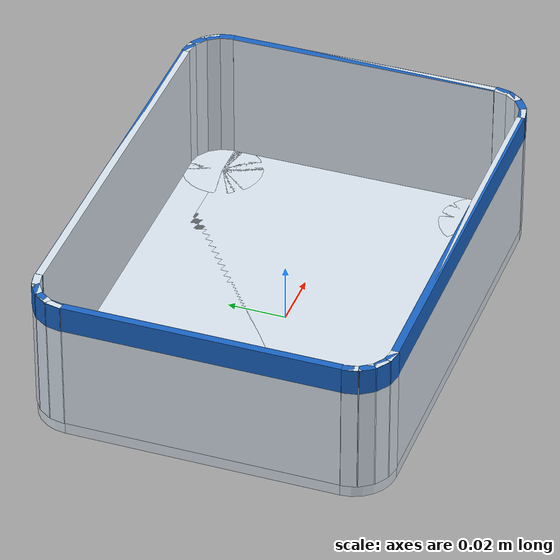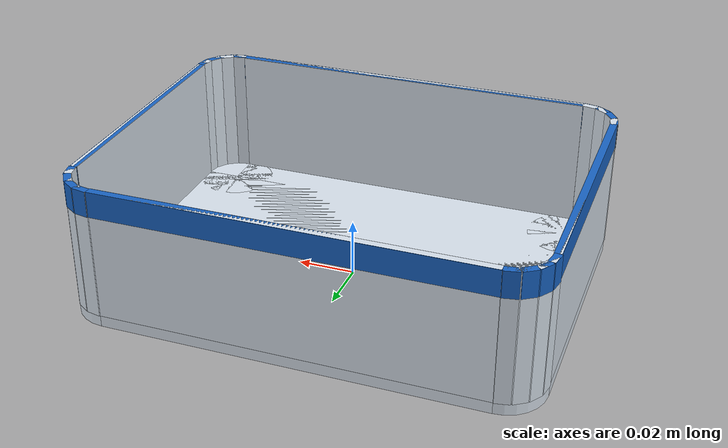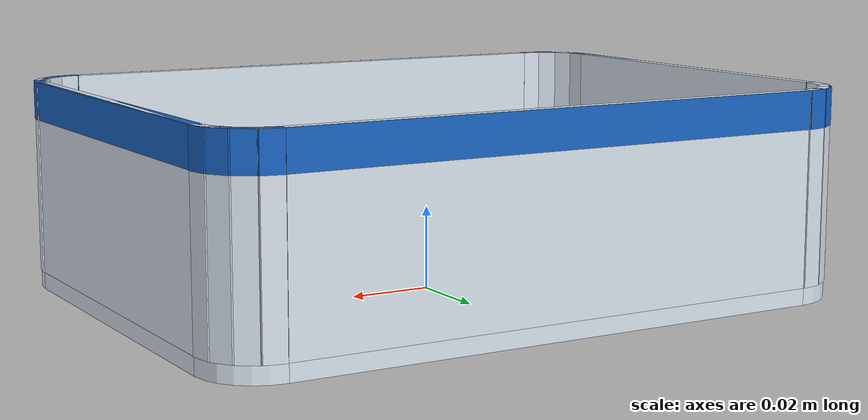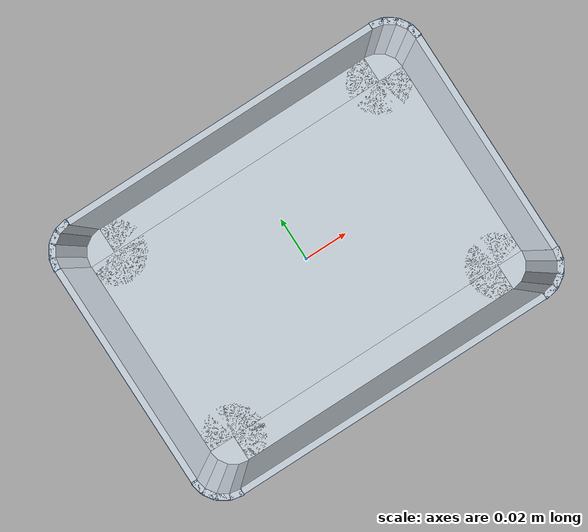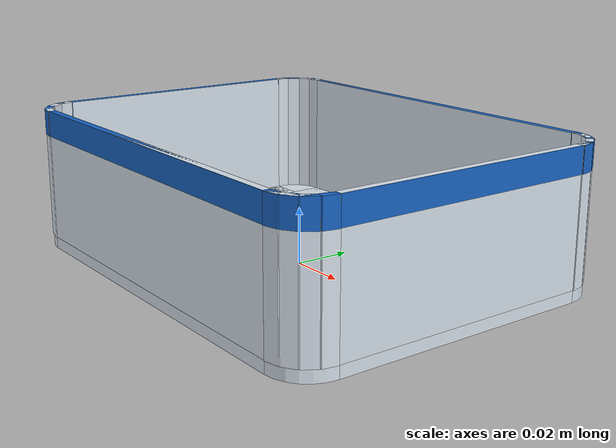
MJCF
<mujoco model="lock_box_large">
  <!-- AUTO-GENERATED by build_objects.py. Do not edit by hand.
       160 x 120 x 50 mm open container with 14 mm rounded corners:
       floor slab plus 2.5 mm walls. Origin at bottom center. -->

  <default>
    <default class="box_geom">
      <geom condim="4" friction="1.2 0.05 0.001" solref="0.01 1" density="900" rgba="0.86 0.90 0.94 1"/>
    </default>
    <default class="box_print">
      <geom contype="0" conaffinity="0" group="1" mass="0"/>
    </default>
  </default>

  <worldbody>
    <body name="root">
      <freejoint name="free"/>
      <!-- Floor. -->
      <geom class="box_geom" type="box" pos="+0.00000 +0.00000 +0.00200" size="+0.08000 +0.04600 +0.00200"/>
      <geom class="box_geom" type="box" pos="+0.00000 +0.00000 +0.00200" size="+0.06600 +0.06000 +0.00200"/>
      <geom class="box_geom" type="cylinder" pos="+0.06600 +0.04600 +0.00200" size="+0.01400 +0.00200"/>
      <geom class="box_geom" type="cylinder" pos="+0.06600 -0.04600 +0.00200" size="+0.01400 +0.00200"/>
      <geom class="box_geom" type="cylinder" pos="-0.06600 +0.04600 +0.00200" size="+0.01400 +0.00200"/>
      <geom class="box_geom" type="cylinder" pos="-0.06600 -0.04600 +0.00200" size="+0.01400 +0.00200"/>

      <!-- Side walls. -->
      <geom class="box_geom" type="box"  pos="+0.07875 +0.00000 +0.02700" size="+0.00125 +0.04600 +0.02300"/>
      <geom class="box_geom" type="box"  pos="-0.07875 +0.00000 +0.02700" size="+0.00125 +0.04600 +0.02300"/>
      <geom class="box_geom" type="box"  pos="+0.00000 +0.05875 +0.02700" size="+0.06600 +0.00125 +0.02300"/>
      <geom class="box_geom" type="box"  pos="+0.00000 -0.05875 +0.02700" size="+0.06600 +0.00125 +0.02300"/>
      <geom class="box_geom" type="box"  pos="+0.07851 +0.04849 +0.02700" quat="+0.995185 +0.000000 +0.000000 +0.098017" size="+0.00125 +0.00259 +0.02300"/>
      <geom class="box_geom" type="box"  pos="+0.07660 +0.05308 +0.02700" quat="+0.956940 +0.000000 +0.000000 +0.290285" size="+0.00125 +0.00259 +0.02300"/>
      <geom class="box_geom" type="box"  pos="+0.07308 +0.05660 +0.02700" quat="+0.881921 +0.000000 +0.000000 +0.471397" size="+0.00125 +0.00259 +0.02300"/>
      <geom class="box_geom" type="box"  pos="+0.06849 +0.05851 +0.02700" quat="+0.773010 +0.000000 +0.000000 +0.634393" size="+0.00125 +0.00259 +0.02300"/>
      <geom class="box_geom" type="box"  pos="+0.06849 -0.05851 +0.02700" quat="+0.773010 +0.000000 +0.000000 -0.634393" size="+0.00125 +0.00259 +0.02300"/>
      <geom class="box_geom" type="box"  pos="+0.07308 -0.05660 +0.02700" quat="+0.881921 +0.000000 +0.000000 -0.471397" size="+0.00125 +0.00259 +0.02300"/>
      <geom class="box_geom" type="box"  pos="+0.07660 -0.05308 +0.02700" quat="+0.956940 +0.000000 +0.000000 -0.290285" size="+0.00125 +0.00259 +0.02300"/>
      <geom class="box_geom" type="box"  pos="+0.07851 -0.04849 +0.02700" quat="+0.995185 +0.000000 +0.000000 -0.098017" size="+0.00125 +0.00259 +0.02300"/>
      <geom class="box_geom" type="box"  pos="-0.06849 +0.05851 +0.02700" quat="+0.634393 +0.000000 +0.000000 +0.773010" size="+0.00125 +0.00259 +0.02300"/>
      <geom class="box_geom" type="box"  pos="-0.07308 +0.05660 +0.02700" quat="+0.471397 +0.000000 +0.000000 +0.881921" size="+0.00125 +0.00259 +0.02300"/>
      <geom class="box_geom" type="box"  pos="-0.07660 +0.05308 +0.02700" quat="+0.290285 +0.000000 +0.000000 +0.956940" size="+0.00125 +0.00259 +0.02300"/>
      <geom class="box_geom" type="box"  pos="-0.07851 +0.04849 +0.02700" quat="+0.098017 +0.000000 +0.000000 +0.995185" size="+0.00125 +0.00259 +0.02300"/>
      <geom class="box_geom" type="box"  pos="-0.07851 -0.04849 +0.02700" quat="+0.098017 +0.000000 +0.000000 -0.995185" size="+0.00125 +0.00259 +0.02300"/>
      <geom class="box_geom" type="box"  pos="-0.07660 -0.05308 +0.02700" quat="+0.290285 +0.000000 +0.000000 -0.956940" size="+0.00125 +0.00259 +0.02300"/>
      <geom class="box_geom" type="box"  pos="-0.07308 -0.05660 +0.02700" quat="+0.471397 +0.000000 +0.000000 -0.881921" size="+0.00125 +0.00259 +0.02300"/>
      <geom class="box_geom" type="box"  pos="-0.06849 -0.05851 +0.02700" quat="+0.634393 +0.000000 +0.000000 -0.773010" size="+0.00125 +0.00259 +0.02300"/>
      <!-- Coloured rim (visual only). -->
      <geom class="box_print" type="box" rgba="0.10 0.40 0.78 1" pos="+0.07885 +0.00000 +0.04550" size="+0.00125 +0.04610 +0.00450"/>
      <geom class="box_print" type="box" rgba="0.10 0.40 0.78 1" pos="-0.07885 +0.00000 +0.04550" size="+0.00125 +0.04610 +0.00450"/>
      <geom class="box_print" type="box" rgba="0.10 0.40 0.78 1" pos="+0.00000 +0.05885 +0.04550" size="+0.06610 +0.00125 +0.00450"/>
      <geom class="box_print" type="box" rgba="0.10 0.40 0.78 1" pos="+0.00000 -0.05885 +0.04550" size="+0.06610 +0.00125 +0.00450"/>
      <geom class="box_print" type="box" rgba="0.10 0.40 0.78 1" pos="+0.07861 +0.04859 +0.04550" quat="+0.995185 +0.000000 +0.000000 +0.098017" size="+0.00125 +0.00259 +0.00450"/>
      <geom class="box_print" type="box" rgba="0.10 0.40 0.78 1" pos="+0.07670 +0.05318 +0.04550" quat="+0.956940 +0.000000 +0.000000 +0.290285" size="+0.00125 +0.00259 +0.00450"/>
      <geom class="box_print" type="box" rgba="0.10 0.40 0.78 1" pos="+0.07318 +0.05670 +0.04550" quat="+0.881921 +0.000000 +0.000000 +0.471397" size="+0.00125 +0.00259 +0.00450"/>
      <geom class="box_print" type="box" rgba="0.10 0.40 0.78 1" pos="+0.06859 +0.05861 +0.04550" quat="+0.773010 +0.000000 +0.000000 +0.634393" size="+0.00125 +0.00259 +0.00450"/>
      <geom class="box_print" type="box" rgba="0.10 0.40 0.78 1" pos="+0.06859 -0.05861 +0.04550" quat="+0.773010 +0.000000 +0.000000 -0.634393" size="+0.00125 +0.00259 +0.00450"/>
      <geom class="box_print" type="box" rgba="0.10 0.40 0.78 1" pos="+0.07318 -0.05670 +0.04550" quat="+0.881921 +0.000000 +0.000000 -0.471397" size="+0.00125 +0.00259 +0.00450"/>
      <geom class="box_print" type="box" rgba="0.10 0.40 0.78 1" pos="+0.07670 -0.05318 +0.04550" quat="+0.956940 +0.000000 +0.000000 -0.290285" size="+0.00125 +0.00259 +0.00450"/>
      <geom class="box_print" type="box" rgba="0.10 0.40 0.78 1" pos="+0.07861 -0.04859 +0.04550" quat="+0.995185 +0.000000 +0.000000 -0.098017" size="+0.00125 +0.00259 +0.00450"/>
      <geom class="box_print" type="box" rgba="0.10 0.40 0.78 1" pos="-0.06859 +0.05861 +0.04550" quat="+0.634393 +0.000000 +0.000000 +0.773010" size="+0.00125 +0.00259 +0.00450"/>
      <geom class="box_print" type="box" rgba="0.10 0.40 0.78 1" pos="-0.07318 +0.05670 +0.04550" quat="+0.471397 +0.000000 +0.000000 +0.881921" size="+0.00125 +0.00259 +0.00450"/>
      <geom class="box_print" type="box" rgba="0.10 0.40 0.78 1" pos="-0.07670 +0.05318 +0.04550" quat="+0.290285 +0.000000 +0.000000 +0.956940" size="+0.00125 +0.00259 +0.00450"/>
      <geom class="box_print" type="box" rgba="0.10 0.40 0.78 1" pos="-0.07861 +0.04859 +0.04550" quat="+0.098017 +0.000000 +0.000000 +0.995185" size="+0.00125 +0.00259 +0.00450"/>
      <geom class="box_print" type="box" rgba="0.10 0.40 0.78 1" pos="-0.07861 -0.04859 +0.04550" quat="+0.098017 +0.000000 +0.000000 -0.995185" size="+0.00125 +0.00259 +0.00450"/>
      <geom class="box_print" type="box" rgba="0.10 0.40 0.78 1" pos="-0.07670 -0.05318 +0.04550" quat="+0.290285 +0.000000 +0.000000 -0.956940" size="+0.00125 +0.00259 +0.00450"/>
      <geom class="box_print" type="box" rgba="0.10 0.40 0.78 1" pos="-0.07318 -0.05670 +0.04550" quat="+0.471397 +0.000000 +0.000000 -0.881921" size="+0.00125 +0.00259 +0.00450"/>
      <geom class="box_print" type="box" rgba="0.10 0.40 0.78 1" pos="-0.06859 -0.05861 +0.04550" quat="+0.634393 +0.000000 +0.000000 -0.773010" size="+0.00125 +0.00259 +0.00450"/>
    </body>
  </worldbody>
</mujoco>
